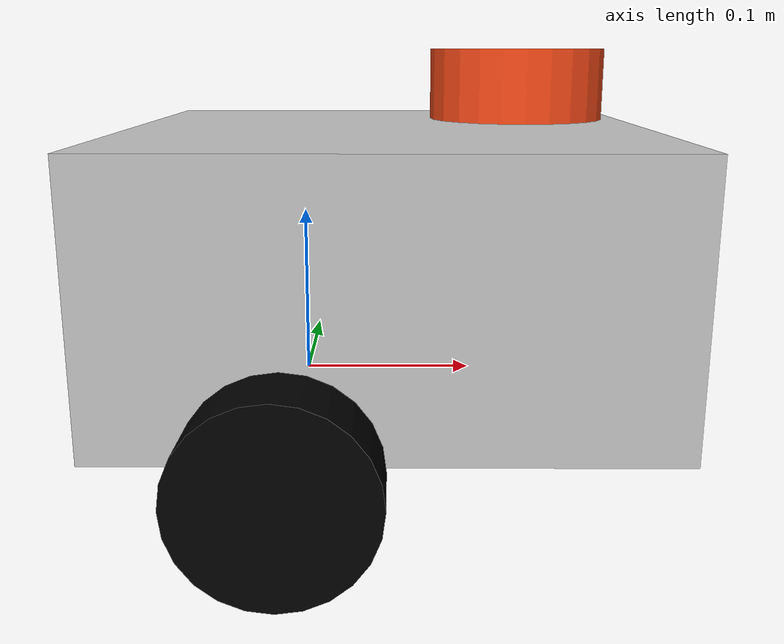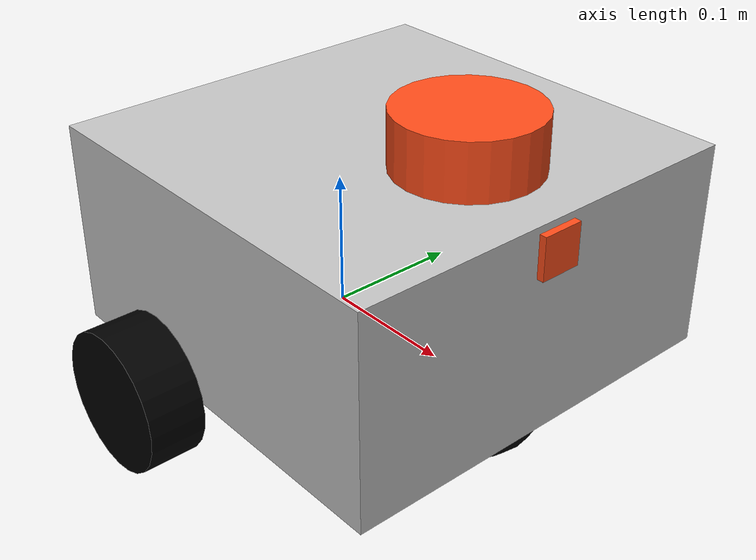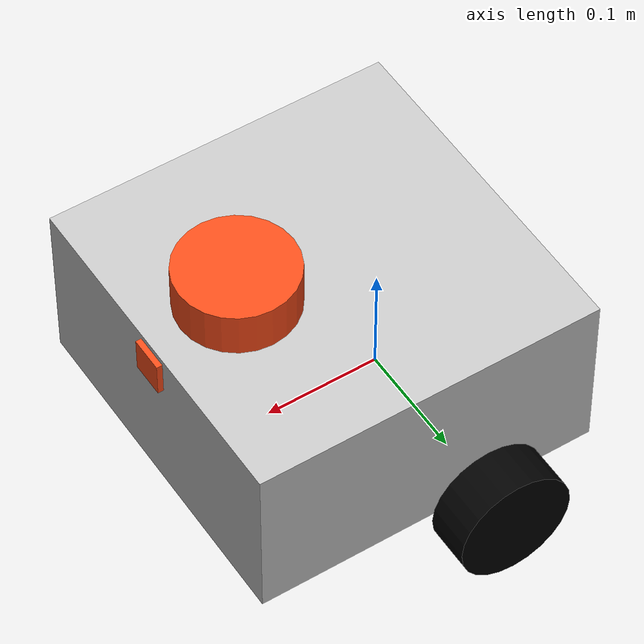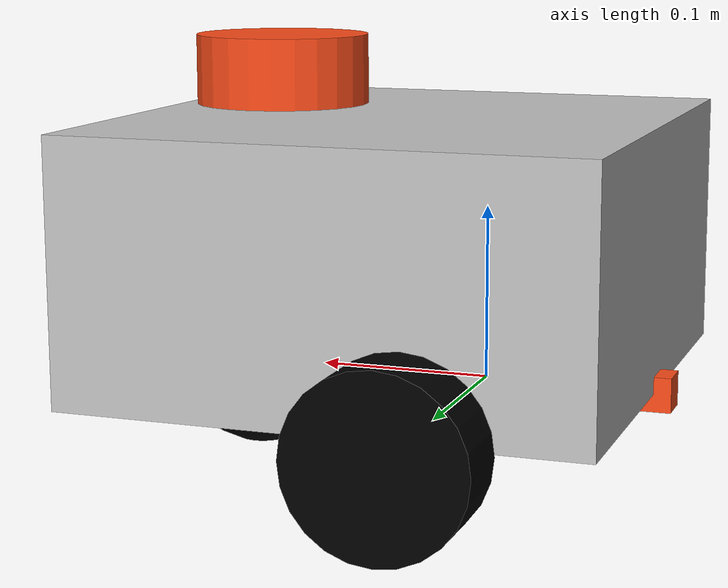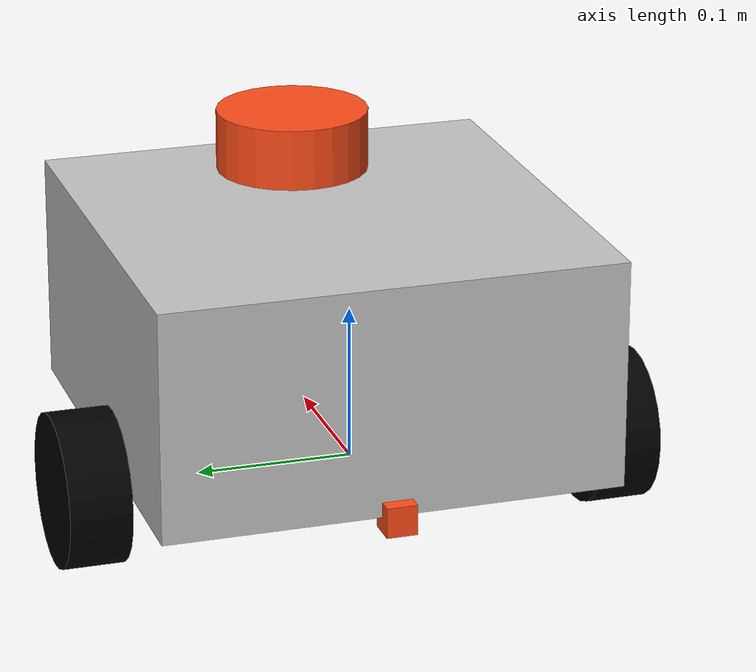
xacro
<?xml version="1.0"?>
<robot xmlns:xacro="http://www.ros.org/wiki/xacro"  name="robot">

    <!-- arguments -->
    <xacro:arg name="use_ros2_control" default="true"/>
    <!-- include -->
    <xacro:include filename="core.xacro"/>
    <!-- control -->
    <xacro:if value="$(arg use_ros2_control)">
        <xacro:include filename="ros2_control.xacro" />
    </xacro:if>
    <xacro:unless value="$(arg use_ros2_control)">
        <xacro:include filename="gazebo_control.xacro" />
    </xacro:unless>
    <!-- sensors -->
    <xacro:include filename="lidar.xacro"/>
    <xacro:include filename="camera.xacro"/>
    <xacro:include filename="imu.xacro"/>
    <xacro:include filename="uwb.xacro"/>
</robot>

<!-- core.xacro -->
<robot xmlns:xacro="http://www.ros.org/wiki/xacro"  name="robot">

    <!-- include -->
    <xacro:include filename="inertial.xacro"/>

    <!-- colors -->
    <material name="white">
        <color rgba="1 1 1 1"/>
    </material>

    <material name="orange">
        <color rgba="1 0.3 0.1 1"/>
    </material>

    <material name="grey">
        <color rgba="0.769 0.769 0.769 1"/>
    </material>

    <material name="black">
        <color rgba="0 0 0 1"/>
    </material>

    <!-- base_link -->
    <link name="base_link">"base_link"</link>

    <!-- chassis -->
    <link name="chassis">
        <visual>
            <origin xyz="0.15 0 0.075" rpy="0 0 0"/>
            <geometry>
                <box size="0.3 0.3 0.15"/>
            </geometry>
            <material name="grey"/>
        </visual>
        <collision>
            <origin xyz="0.15 0 0.075" rpy="0 0 0"/>
            <geometry>
                <box size="0.3 0.3 0.15"/>
            </geometry>
        </collision>
        <xacro:inertial_box mass="0.5" x="0.3" y="0.3" z="0.15">
            <origin xyz="0.15 0 0.075" rpy="0 0 0"/>
        </xacro:inertial_box>
    </link>

    <gazebo reference="chassis">
        <material>Gazebo/Grey</material>
    </gazebo>

    <joint name="chassis_joint" type="fixed">
        <parent link="base_link"/>
        <child link="chassis"/>
        <origin xyz="-0.1 0 0" rpy="0 0 0"/>
    </joint>

    <!-- left_wheel -->
    <link name="left_wheel">
        <visual>
            <geometry>
                <cylinder radius="0.05" length="0.04"/>
            </geometry>
            <material name="black"/>
        </visual>
        <collision>
            <geometry>
                <sphere radius="0.05"/> <!-- Change to sphere so there is no friction which causes drift (it is unrealistic but for this case better) -->
            </geometry>
        </collision>
        <xacro:inertial_cylinder mass="0.1" radius="0.05" length="0.04">
            <origin xyz="0 0 0" rpy="0 0 0"/>
        </xacro:inertial_cylinder>
    </link>

    <gazebo reference="left_wheel">
        <material>Gazebo/Black</material>
    </gazebo>

    <joint name="left_wheel_joint" type="continuous">
        <parent link="base_link"/>
        <child link="left_wheel"/>
        <origin xyz="0 0.175 0" rpy="-${pi/2} 0 0"/>
        <axis xyz="0 0 1"/>
    </joint>

    <!-- right_wheel -->
    <link name="right_wheel">
        <visual>
            <geometry>
                <cylinder radius="0.05" length="0.04"/>
            </geometry>
            <material name="black"/>
        </visual>
        <collision>
            <geometry>
                <sphere radius="0.05"/> <!-- Change to sphere so there is no friction which causes drift (it is unrealistic but for this case better) -->
            </geometry>
        </collision>
        <xacro:inertial_cylinder mass="0.1" radius="0.05" length="0.04">
            <origin xyz="0 0 0" rpy="0 0 0"/>
        </xacro:inertial_cylinder>
    </link>

    <gazebo reference="right_wheel">
        <material>Gazebo/Black</material>
    </gazebo>

    <joint name="right_wheel_joint" type="continuous">
        <parent link="base_link"/>
        <child link="right_wheel"/>
        <origin xyz="0 -0.175 0" rpy="${pi/2} 0 0"/>
        <axis xyz="0 0 -1"/>
    </joint>

    <!-- caster -->
    <link name="caster">
        <visual>
            <geometry>
                <sphere radius="0.05"/>
            </geometry>
            <material name="black"/>
        </visual>
        <collision>
            <geometry>
                <sphere radius="0.05"/>
            </geometry>
        </collision>
        <xacro:inertial_sphere mass="0.01" radius="0.05">
            <origin xyz="0 0 0" rpy="0 0 0"/>
        </xacro:inertial_sphere>
    </link>

    <gazebo reference="caster">
        <material>Gazebo/Black</material>
        <mu1>0.001</mu1>
        <mu2>0.001</mu2>
    </gazebo>

    <joint name="caster_joint" type="fixed">
        <parent link="chassis"/>
        <child link="caster"/>
        <origin xyz="0.24 0 0" rpy="0 0 0"/>
    </joint>

</robot>

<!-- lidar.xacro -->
<robot xmlns:xacro="http://www.ros.org/wiki/xacro" >

    <joint name="laser_joint" type="fixed">
        <parent link="chassis"/>
        <child link="laser_frame"/>
        <origin xyz="0.225 0 0.175" rpy="0 0 0"/>
    </joint>

    <link name="laser_frame">
        <visual>
            <geometry>
                <cylinder radius="0.05" length="0.04"/>
            </geometry>
            <material name="orange"/>
        </visual>
        <xacro:inertial_cylinder mass="0.1" length="0.04" radius="0.05">
            <origin xyz="0 0 0" rpy="0 0 0"/>
        </xacro:inertial_cylinder>
    </link>

    <gazebo reference="laser_frame">
        <material>Gazebo/Orange</material>

        <sensor name="laser" type="ray">
            <pose> 0 0 0 0 0 0 </pose>
            <visualize>false</visualize> <!-- set to true to see laser beams -->
            <update_rate>10</update_rate> <!-- in Hz -->
            <ray>
                <scan>
                    <horizontal>
                        <samples>360</samples> <!-- number of samples -->
                        <min_angle>-3.14</min_angle> <!-- start angle -->
                        <max_angle>3.14</max_angle> <!-- end angle -->
                    </horizontal>
                    <vertical>
                        <samples>8</samples> <!-- number of samples -->
                        <min_angle>-0.07</min_angle> <!-- start angle -->
                        <max_angle>0.07</max_angle> <!-- end angle -->
                    </vertical>
                </scan>
                <range>
                    <min>0.3</min> <!-- minimum range -->
                    <max>12</max> <!-- maximum range -->
                </range>
            </ray>
            <plugin name="laser_controller" filename="libgazebo_ros_ray_sensor.so">
                <ros>
                    <argument>~/out:=scan</argument> <!-- topic name -->
                </ros>
                <output_type>sensor_msgs/LaserScan</output_type> <!-- message type -->
                <frame_name>laser_frame</frame_name> <!-- frame name -->
            </plugin>
        </sensor>
    </gazebo>

</robot>

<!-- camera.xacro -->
<robot xmlns:xacro="http://www.ros.org/wiki/xacro" >

    <joint name="camera_joint" type="fixed">
        <parent link="chassis"/>
        <child link="camera_link"/>
        <origin xyz="0.3 0 0.13" rpy="0 0 0"/>
    </joint>

    <link name="camera_link">
        <visual>
            <geometry>
                <box size="0.010 0.03 0.03"/>
            </geometry>
            <material name="orange"/>
        </visual>
    </link>

    <joint name="camera_optical_joint" type="fixed">
        <parent link="camera_link"/>
        <child link="camera_link_optical"/>
        <origin xyz="0 0 0" rpy="${-pi/2} 0 ${-pi/2}"/>
    </joint>

    <link name="camera_link_optical"></link>

    <gazebo reference="camera_link">
        <material>Gazebo/Orange</material>

        <sensor name="camera" type="camera">
            <pose> 0 0 0 0 0 0 </pose>
            <visualize>true</visualize> <!-- set to true to see camera fov -->
            <update_rate>10</update_rate> <!-- in Hz -->
            <camera>
                <horizontal_fov>1.089</horizontal_fov>
                <image>
                    <format>R8G8B8</format> <!-- RGB format -->
                    <width>640</width> <!-- width -->
                    <height>480</height> <!-- height -->
                </image>
                <clip>
                    <near>0.05</near> <!-- near clipping plane -->
                    <far>8.0</far> <!-- far clipping plane -->
                </clip>
            </camera>
            <plugin name="camera_controller" filename="libgazebo_ros_camera.so">
                <frame_name>camera_link_optical</frame_name>
            </plugin>
        </sensor>
    </gazebo>

</robot>

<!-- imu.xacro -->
<robot xmlns:xacro="http://www.ros.org/wiki/xacro" >

    <joint name="imu_joint" type="fixed">
        <parent link="chassis"/>
        <child link="imu_frame"/>
        <origin xyz="0.0 0 0.0" rpy="0 0 0"/>
    </joint>

    <link name="imu_frame">
        <visual>
            <geometry>
                <box size="0.02 0.02 0.02"/>
            </geometry>
            <material name="orange"/>
        </visual>
        <xacro:inertial_box mass="0.01" x="0.2" y="0.2" z="0.2">
            <origin xyz="0 0 0" rpy="0 0 0"/>
        </xacro:inertial_box>
    </link>

    <gazebo reference="imu_frame">
      <gravity>true</gravity>
      <sensor name="imu_sensor" type="imu">
        <always_on>true</always_on>
        <update_rate>100</update_rate>
        <visualize>true</visualize>
        <topic>__default_topic__</topic>
        <plugin filename="libgazebo_ros_imu_sensor.so" name="imu_plugin">
          <ros>
            <remapping>imu_plugin/out:=imu/data</remapping>
          </ros>
          <topicName>imu</topicName>
          <bodyName>imu_frame</bodyName>
          <updateRateHZ>100.0</updateRateHZ>
          <gaussianNoise>0.0</gaussianNoise>
          <xyzOffset>0 0 0</xyzOffset>
          <rpyOffset>0 0 0</rpyOffset>
          <frameName>imu_frame</frameName>
          <initialOrientationAsReference>false</initialOrientationAsReference>
        </plugin>
        <pose>0 0 0 0 0 0</pose>
      </sensor>
      <material>Gazebo/Orange</material>
    </gazebo>

</robot>

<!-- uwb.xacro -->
<robot xmlns:xacro="http://www.ros.org/wiki/xacro" >

    <joint name="uwb_joint" type="fixed">
        <parent link="chassis"/>
        <child link="uwb_frame"/>
        <origin xyz="0.0 0 0.0" rpy="0 0 0"/>
    </joint>

    <link name="uwb_frame">
        <visual>
            <geometry>
                <box size="0.02 0.02 0.02"/>
            </geometry>
            <material name="orange"/>
        </visual>
        <xacro:inertial_box mass="0.01" x="0.2" y="0.2" z="0.2">
            <origin xyz="0 0 0" rpy="0 0 0"/>
        </xacro:inertial_box>
    </link>

    <gazebo>
        <plugin name='uwb_plugin' filename='libgazebosensorplugins.so'>
            <update_rate>25</update_rate>
            <nlosSoftWallWidth>0.25</nlosSoftWallWidth>
            <tag_z_offset>0.2</tag_z_offset>
            <tag_link>uwb_frame</tag_link>
            <anchor_prefix>uwb_anchor</anchor_prefix>
            <all_los>false</all_los>
            <tag_id>0</tag_id>
        </plugin>
    </gazebo>

</robot>
